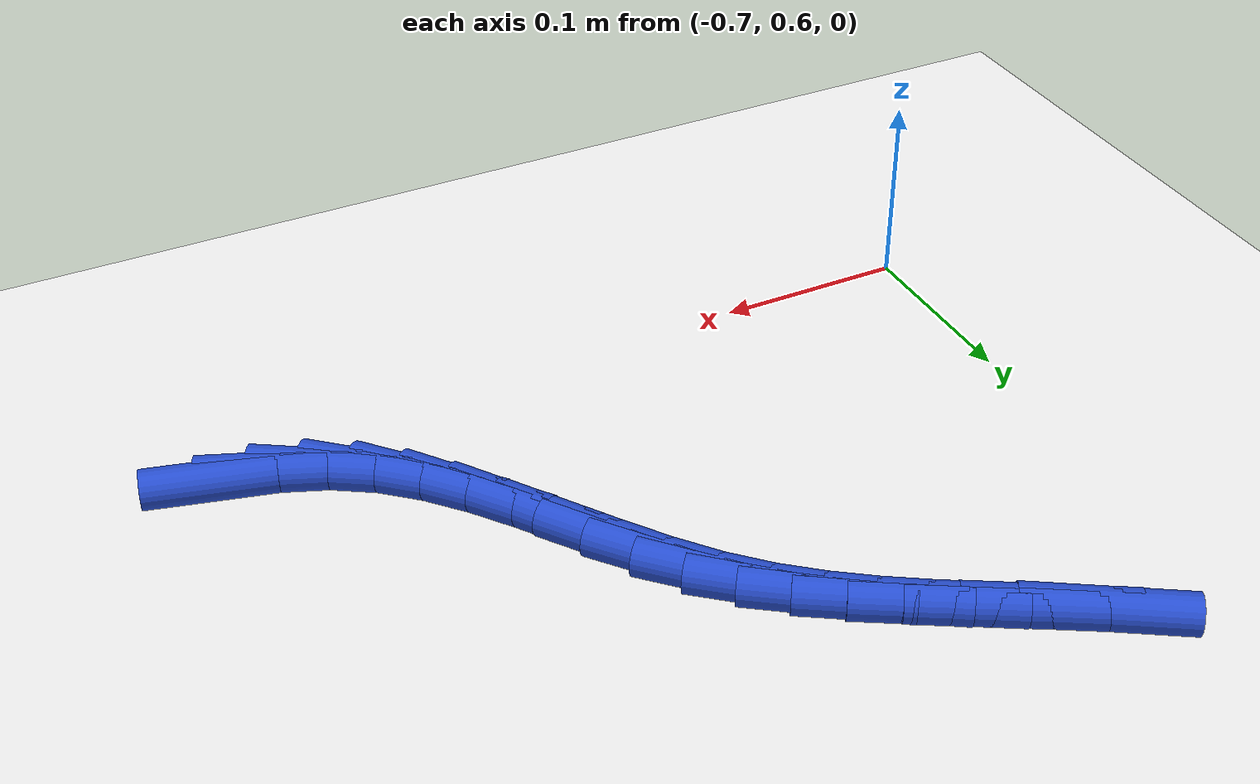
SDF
<sdf version="1.6">
 <world name="default">
  <model name="ground_plane">
   <static>1</static>
   <link name="link">
    <collision name="collision">
     <geometry><plane><normal>0 0 1</normal><size>100 100</size></plane></geometry>
     <surface><friction><ode><mu>100</mu><mu2>50</mu2></ode></friction></surface>
    </collision>
    <visual name="visual">
     <cast_shadows>0</cast_shadows>
     <geometry><plane><normal>0 0 1</normal><size>100 100</size></plane></geometry>
     <material>
      <script><uri>file://media/materials/scripts/gazebo.material</uri><name>Gazebo/WhiteGlow</name></script>
     </material>
    </visual>
   </link>
  </model>
  <model name="line">
   <link name="link_31">
    <pose>-0.31235977458671604 0.6284031586572006 0.01 0 1.57 -0.25016587829168807</pose>
    <collision name="collision">
     <geometry><cylinder><radius>0.01</radius><length>0.08</length></cylinder></geometry>
    </collision>
    <visual name="visual">
     <material>
      <script><name>Gazebo/Blue</name><uri>file://media/materials/scripts/gazebo.material</uri></script>
     </material>
     <geometry><cylinder><radius>0.01</radius><length>0.08</length></cylinder></geometry>
    </visual>
   </link>
   <link name="link_32">
    <pose>-0.3366169981686428 0.6346013310047612 0.01 0 1.57 -0.3788819816051231</pose>
    <collision name="collision">
     <geometry><cylinder><radius>0.01</radius><length>0.08</length></cylinder></geometry>
    </collision>
    <visual name="visual">
     <material>
      <script><name>Gazebo/Blue</name><uri>file://media/materials/scripts/gazebo.material</uri></script>
     </material>
     <geometry><cylinder><radius>0.01</radius><length>0.08</length></cylinder></geometry>
    </visual>
   </link>
   <link name="link_33">
    <pose>-0.3591695849877641 0.6435798974771353 0.01 0 1.57 -0.5522684606557956</pose>
    <collision name="collision">
     <geometry><cylinder><radius>0.01</radius><length>0.08</length></cylinder></geometry>
    </collision>
    <visual name="visual">
     <material>
      <script><name>Gazebo/Blue</name><uri>file://media/materials/scripts/gazebo.material</uri></script>
     </material>
     <geometry><cylinder><radius>0.01</radius><length>0.08</length></cylinder></geometry>
    </visual>
   </link>
   <link name="link_34">
    <pose>-0.37949132501001354 0.6561027782904382 0.01 0 1.57 -0.7136770003450927</pose>
    <collision name="collision">
     <geometry><cylinder><radius>0.01</radius><length>0.08</length></cylinder></geometry>
    </collision>
    <visual name="visual">
     <material>
      <script><name>Gazebo/Blue</name><uri>file://media/materials/scripts/gazebo.material</uri></script>
     </material>
     <geometry><cylinder><radius>0.01</radius><length>0.08</length></cylinder></geometry>
    </visual>
   </link>
   <link name="link_35">
    <pose>-0.39773810367896434 0.671903439330115 0.01 0 1.57 -0.8325441333770828</pose>
    <collision name="collision">
     <geometry><cylinder><radius>0.01</radius><length>0.08</length></cylinder></geometry>
    </collision>
    <visual name="visual">
     <material>
      <script><name>Gazebo/Blue</name><uri>file://media/materials/scripts/gazebo.material</uri></script>
     </material>
     <geometry><cylinder><radius>0.01</radius><length>0.08</length></cylinder></geometry>
    </visual>
   </link>
   <link name="link_36">
    <pose>-0.4143980984785112 0.6902133467129241 0.01 0 1.57 -0.9106454678530164</pose>
    <collision name="collision">
     <geometry><cylinder><radius>0.01</radius><length>0.08</length></cylinder></geometry>
    </collision>
    <visual name="visual">
     <material>
      <script><name>Gazebo/Blue</name><uri>file://media/materials/scripts/gazebo.material</uri></script>
     </material>
     <geometry><cylinder><radius>0.01</radius><length>0.08</length></cylinder></geometry>
    </visual>
   </link>
   <link name="link_37">
    <pose>-0.42996171600053956 0.7102605990007033 0.01 0 1.57 -0.9521691379988743</pose>
    <collision name="collision">
     <geometry><cylinder><radius>0.01</radius><length>0.08</length></cylinder></geometry>
    </collision>
    <visual name="visual">
     <material>
      <script><name>Gazebo/Blue</name><uri>file://media/materials/scripts/gazebo.material</uri></script>
     </material>
     <geometry><cylinder><radius>0.01</radius><length>0.08</length></cylinder></geometry>
    </visual>
   </link>
   <link name="link_38">
    <pose>-0.44491936283693456 0.7312732947552895 0.01 0 1.57 -0.9601426414158248</pose>
    <collision name="collision">
     <geometry><cylinder><radius>0.01</radius><length>0.08</length></cylinder></geometry>
    </collision>
    <visual name="visual">
     <material>
      <script><name>Gazebo/Blue</name><uri>file://media/materials/scripts/gazebo.material</uri></script>
     </material>
     <geometry><cylinder><radius>0.01</radius><length>0.08</length></cylinder></geometry>
    </visual>
   </link>
   <link name="link_39">
    <pose>-0.45976144557958193 0.75247953253852 0.01 0 1.57 -0.9352219871458216</pose>
    <collision name="collision">
     <geometry><cylinder><radius>0.01</radius><length>0.08</length></cylinder></geometry>
    </collision>
    <visual name="visual">
     <material>
      <script><name>Gazebo/Blue</name><uri>file://media/materials/scripts/gazebo.material</uri></script>
     </material>
     <geometry><cylinder><radius>0.01</radius><length>0.08</length></cylinder></geometry>
    </visual>
   </link>
   <link name="link_40">
    <pose>-0.4749783708203664 0.7731074109122318 0.01 0 1.57 -0.8755227579774498</pose>
    <collision name="collision">
     <geometry><cylinder><radius>0.01</radius><length>0.08</length></cylinder></geometry>
    </collision>
    <visual name="visual">
     <material>
      <script><name>Gazebo/Blue</name><uri>file://media/materials/scripts/gazebo.material</uri></script>
     </material>
     <geometry><cylinder><radius>0.01</radius><length>0.08</length></cylinder></geometry>
    </visual>
   </link>
   <link name="link_41">
    <pose>-0.49106054515117414 0.7923850284382626 0.01 0 1.57 -0.7812546522800257</pose>
    <collision name="collision">
     <geometry><cylinder><radius>0.01</radius><length>0.08</length></cylinder></geometry>
    </collision>
    <visual name="visual">
     <material>
      <script><name>Gazebo/Blue</name><uri>file://media/materials/scripts/gazebo.material</uri></script>
     </material>
     <geometry><cylinder><radius>0.01</radius><length>0.08</length></cylinder></geometry>
    </visual>
   </link>
   <link name="link_42">
    <pose>-0.508447459562861 0.8096284508431593 0.01 0 1.57 -0.6855163507687315</pose>
    <collision name="collision">
     <geometry><cylinder><radius>0.01</radius><length>0.08</length></cylinder></geometry>
    </collision>
    <visual name="visual">
     <material>
      <script><name>Gazebo/Blue</name><uri>file://media/materials/scripts/gazebo.material</uri></script>
     </material>
     <geometry><cylinder><radius>0.01</radius><length>0.08</length></cylinder></geometry>
    </visual>
   </link>
   <link name="link_43">
    <pose>-0.5271383607761979 0.8249143563069513 0.01 0 1.57 -0.6092476882218621</pose>
    <collision name="collision">
     <geometry><cylinder><radius>0.01</radius><length>0.08</length></cylinder></geometry>
    </collision>
    <visual name="visual">
     <material>
      <script><name>Gazebo/Blue</name><uri>file://media/materials/scripts/gazebo.material</uri></script>
     </material>
     <geometry><cylinder><radius>0.01</radius><length>0.08</length></cylinder></geometry>
    </visual>
   </link>
   <link name="link_44">
    <pose>-0.5469070441694293 0.8387089365375723 0.01 0 1.57 -0.5546163647159799</pose>
    <collision name="collision">
     <geometry><cylinder><radius>0.01</radius><length>0.08</length></cylinder></geometry>
    </collision>
    <visual name="visual">
     <material>
      <script><name>Gazebo/Blue</name><uri>file://media/materials/scripts/gazebo.material</uri></script>
     </material>
     <geometry><cylinder><radius>0.01</radius><length>0.08</length></cylinder></geometry>
    </visual>
   </link>
   <link name="link_45">
    <pose>-0.5675254782124305 0.8514815396026194 0.01 0 1.57 -0.5220778849564481</pose>
    <collision name="collision">
     <geometry><cylinder><radius>0.01</radius><length>0.08</length></cylinder></geometry>
    </collision>
    <visual name="visual">
     <material>
      <script><name>Gazebo/Blue</name><uri>file://media/materials/scripts/gazebo.material</uri></script>
     </material>
     <geometry><cylinder><radius>0.01</radius><length>0.08</length></cylinder></geometry>
    </visual>
   </link>
   <link name="link_46">
    <pose>-0.5887656313750774 0.8637015135696897 0.01 0 1.57 -0.5112530709110095</pose>
    <collision name="collision">
     <geometry><cylinder><radius>0.01</radius><length>0.08</length></cylinder></geometry>
    </collision>
    <visual name="visual">
     <material>
      <script><name>Gazebo/Blue</name><uri>file://media/materials/scripts/gazebo.material</uri></script>
     </material>
     <geometry><cylinder><radius>0.01</radius><length>0.08</length></cylinder></geometry>
    </visual>
   </link>
   <link name="link_47">
    <pose>-0.6103994721272457 0.8758382065063804 0.01 0 1.57 -0.5214221881753405</pose>
    <collision name="collision">
     <geometry><cylinder><radius>0.01</radius><length>0.08</length></cylinder></geometry>
    </collision>
    <visual name="visual">
     <material>
      <script><name>Gazebo/Blue</name><uri>file://media/materials/scripts/gazebo.material</uri></script>
     </material>
     <geometry><cylinder><radius>0.01</radius><length>0.08</length></cylinder></geometry>
    </visual>
   </link>
   <link name="link_48">
    <pose>-0.6321989689388107 0.888360966480289 0.01 0 1.57 -0.5517045330967456</pose>
    <collision name="collision">
     <geometry><cylinder><radius>0.01</radius><length>0.08</length></cylinder></geometry>
    </collision>
    <visual name="visual">
     <material>
      <script><name>Gazebo/Blue</name><uri>file://media/materials/scripts/gazebo.material</uri></script>
     </material>
     <geometry><cylinder><radius>0.01</radius><length>0.08</length></cylinder></geometry>
    </visual>
   </link>
  </model>
 </world>
</sdf>
